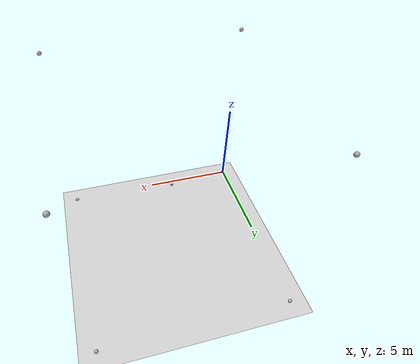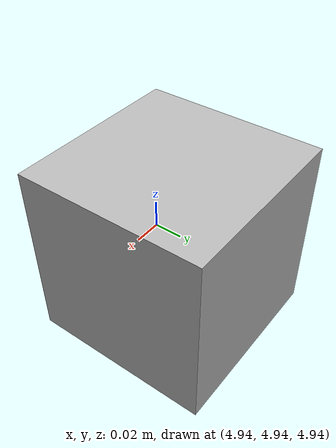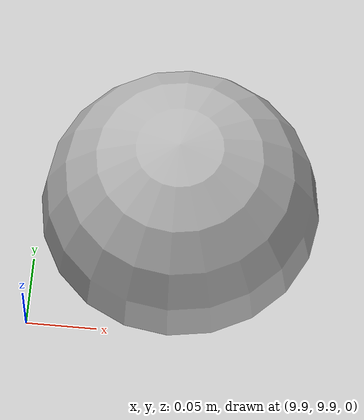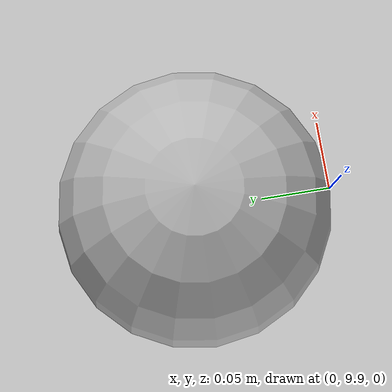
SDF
<?xml version="1.0"?>
<sdf version="1.5">
  <world name="default">
    <!-- A global light source -->
    <include>
      <uri>model://sun</uri>
    </include>
    <!-- A ground plane -->
    <include>
      <uri>model://ground_plane</uri>
    </include>

    <!-- Anchor 0 -->
    <include>
      <name>uwb_anchor_0</name>
      <uri>model://uwb_anchor</uri>
      <pose>0 0 0 0 0 0</pose>
    </include>
    <!-- Anchor 1 -->
    <include>
      <name>uwb_anchor_1</name>
      <uri>model://uwb_anchor</uri>
      <pose>0 0 10 0 0 0</pose>
    </include>
    <!-- Anchor 2 -->
    <include>
      <name>uwb_anchor_2</name>
      <uri>model://uwb_anchor</uri>
      <pose>0 10 0 0 0 0</pose>
    </include>
    <!-- Anchor 3 -->
    <include>
      <name>uwb_anchor_3</name>
      <uri>model://uwb_anchor</uri>
      <pose>0 10 10 0 0 0</pose>
    </include>
    <!-- Anchor 4 -->
    <include>
      <name>uwb_anchor_4</name>
      <uri>model://uwb_anchor</uri>
      <pose>10 0 0 0 0 0</pose>
    </include>
    <!-- Anchor 5 -->
    <include>
      <name>uwb_anchor_5</name>
      <uri>model://uwb_anchor</uri>
      <pose>10 0 10 0 0 0</pose>
    </include>
    <!-- Anchor 6 -->
    <include>
      <name>uwb_anchor_6</name>
      <uri>model://uwb_anchor</uri>
      <pose>10 10 0 0 0 0</pose>
    </include>
    <!-- Anchor 7 -->
    <include>
      <name>uwb_anchor_7</name>
      <uri>model://uwb_anchor</uri>
      <pose>10 10 10 0 0 0</pose>
    </include>

    <!-- Sensor Zero -->
    <model name='uwb_sensor'>
      <static>1</static>
      <pose>5 5 5 0 0 0</pose>
      <link name="uwb_sensor_head">
        <visual name='uwb_sensor_head_visual'>
          <pose>0 0 0 0 0 0</pose>
          <geometry>
            <box>
              <size>0.1 0.1 0.1</size>
            </box>
          </geometry>
        </visual>
      </link>
      <plugin name="gazebo_ros_uwb" filename="libros2_px4_gazebo_uwb.so">
        <pub_range />
        <anchor_id>test</anchor_id>
        <link_name>uwb_sensor_head</link_name>
        <update_rate>20</update_rate>
        <gaussian_noise>0.02</gaussian_noise>
      </plugin>
    </model>

    <physics name='default_physics' default='0' type='ode'>
      <gravity>0 0 -9.8066</gravity>
      <ode>
        <solver>
          <type>quick</type>
          <iters>10</iters>
          <sor>1.3</sor>
          <use_dynamic_moi_rescaling>0</use_dynamic_moi_rescaling>
        </solver>
        <constraints>
          <cfm>0</cfm>
          <erp>0.2</erp>
          <contact_max_correcting_vel>100</contact_max_correcting_vel>
          <contact_surface_layer>0.001</contact_surface_layer>
        </constraints>
      </ode>
      <max_step_size>0.004</max_step_size>
      <real_time_factor>1</real_time_factor>
      <real_time_update_rate>250</real_time_update_rate>
      <magnetic_field>6.0e-6 2.3e-5 -4.2e-5</magnetic_field>
    </physics>
  </world>
</sdf>

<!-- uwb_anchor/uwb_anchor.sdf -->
<sdf version='1.6'>
  <model name='uwb_anchor'>
    <static>1</static>
    <pose>0 0 0 0 0 0</pose>
    <link name="uwb_anchor_head">
      <visual name='uwb_anchor_head_visual'>
        <pose>0 0 0 0 0 0</pose>
        <geometry>
          <sphere>
            <radius>0.1 0.1 0.1</radius>
          </sphere>
        </geometry>
      </visual>
    </link>
    <plugin name="gazebo_ros_uwb" filename="libros2_px4_gazebo_uwb.so">
      <link_name>uwb_anchor_head</link_name>
      <update_rate>20</update_rate>
      <anchor_offset>0.2</anchor_offset>
    </plugin>
  </model>
</sdf>
